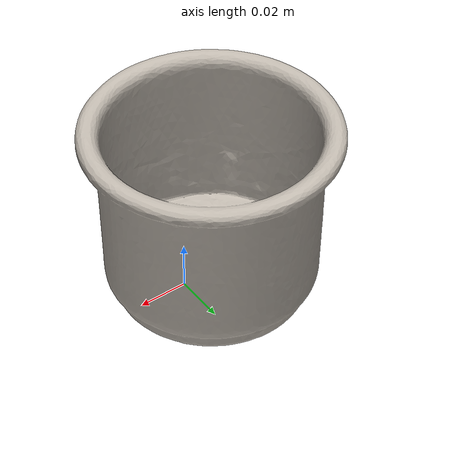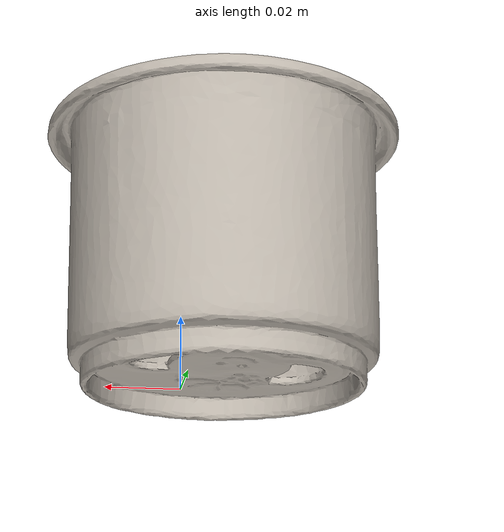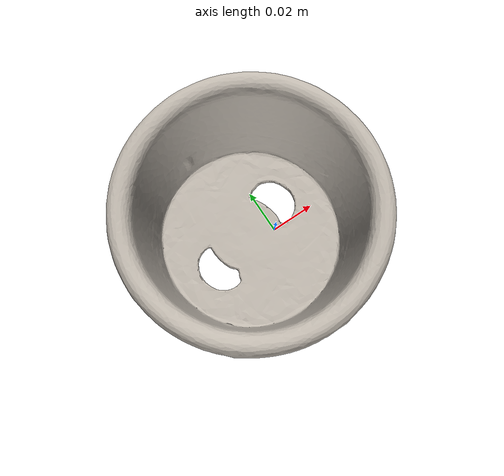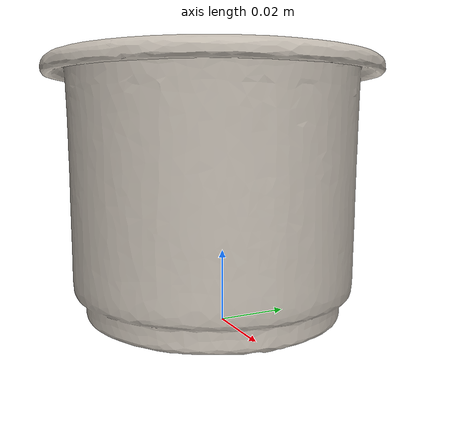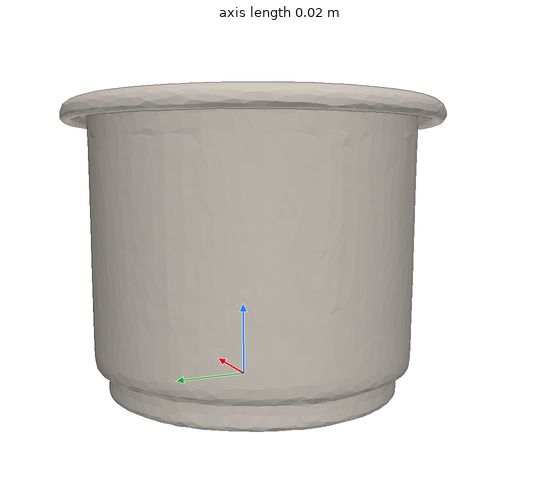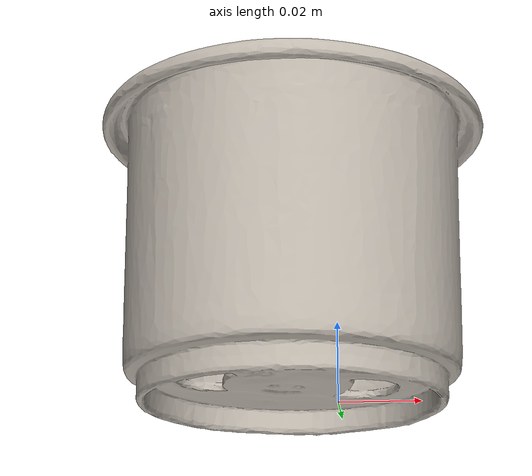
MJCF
<mujoco model="cups_i">
  <compiler angle="radian" meshdir="assets" texturedir="assets"/>
    <default>
        <default class="ycb_col">
            <geom contype="1" conaffinity="1" group="3" rgba=".4 .5 .6 1"/>
        </default>
        <default class="ycb_viz">
            <geom contype="0" conaffinity="0" type="mesh" mass="0"/>
        </default>
    </default>
  <asset>
    <texture type="2d" name="i_cups_tex" file="texture_map.png"/>
    <material name="i_cups_mat" texture="i_cups_tex" specular="0.5" shininess="0.5"/>
    <mesh file="textured.obj" name="i_cups"/>
    <mesh file="textured_collision_0.obj" name="i_cups_collision_0"/>
    <mesh file="textured_collision_1.obj" name="i_cups_collision_1"/>
    <mesh file="textured_collision_2.obj" name="i_cups_collision_2"/>
    <mesh file="textured_collision_3.obj" name="i_cups_collision_3"/>
    <mesh file="textured_collision_4.obj" name="i_cups_collision_4"/>
    <mesh file="textured_collision_5.obj" name="i_cups_collision_5"/>
    <mesh file="textured_collision_6.obj" name="i_cups_collision_6"/>
    <mesh file="textured_collision_7.obj" name="i_cups_collision_7"/>
    <mesh file="textured_collision_8.obj" name="i_cups_collision_8"/>
    <mesh file="textured_collision_9.obj" name="i_cups_collision_9"/>
    <mesh file="textured_collision_10.obj" name="i_cups_collision_10"/>
    <mesh file="textured_collision_11.obj" name="i_cups_collision_11"/>
    <mesh file="textured_collision_12.obj" name="i_cups_collision_12"/>
    <mesh file="textured_collision_13.obj" name="i_cups_collision_13"/>
    <mesh file="textured_collision_14.obj" name="i_cups_collision_14"/>
    <mesh file="textured_collision_15.obj" name="i_cups_collision_15"/>
    <mesh file="textured_collision_16.obj" name="i_cups_collision_16"/>
    <mesh file="textured_collision_17.obj" name="i_cups_collision_17"/>
    <mesh file="textured_collision_18.obj" name="i_cups_collision_18"/>
    <mesh file="textured_collision_19.obj" name="i_cups_collision_19"/>
    <mesh file="textured_collision_20.obj" name="i_cups_collision_20"/>
    <mesh file="textured_collision_21.obj" name="i_cups_collision_21"/>
    <mesh file="textured_collision_22.obj" name="i_cups_collision_22"/>
    <mesh file="textured_collision_23.obj" name="i_cups_collision_23"/>
    <mesh file="textured_collision_24.obj" name="i_cups_collision_24"/>
    <mesh file="textured_collision_25.obj" name="i_cups_collision_25"/>
    <mesh file="textured_collision_26.obj" name="i_cups_collision_26"/>
    <mesh file="textured_collision_27.obj" name="i_cups_collision_27"/>
    <mesh file="textured_collision_28.obj" name="i_cups_collision_28"/>
    <mesh file="textured_collision_29.obj" name="i_cups_collision_29"/>
    <mesh file="textured_collision_30.obj" name="i_cups_collision_30"/>
    <mesh file="textured_collision_31.obj" name="i_cups_collision_31"/>
    <mesh file="textured_collision_32.obj" name="i_cups_collision_32"/>
    <mesh file="textured_collision_33.obj" name="i_cups_collision_33"/>
    <mesh file="textured_collision_34.obj" name="i_cups_collision_34"/>
    <mesh file="textured_collision_35.obj" name="i_cups_collision_35"/>
    <mesh file="textured_collision_36.obj" name="i_cups_collision_36"/>
    <mesh file="textured_collision_37.obj" name="i_cups_collision_37"/>
    <mesh file="textured_collision_38.obj" name="i_cups_collision_38"/>
    <mesh file="textured_collision_39.obj" name="i_cups_collision_39"/>
    <mesh file="textured_collision_40.obj" name="i_cups_collision_40"/>
    <mesh file="textured_collision_41.obj" name="i_cups_collision_41"/>
    <mesh file="textured_collision_42.obj" name="i_cups_collision_42"/>
    <mesh file="textured_collision_43.obj" name="i_cups_collision_43"/>
    <mesh file="textured_collision_44.obj" name="i_cups_collision_44"/>
    <mesh file="textured_collision_45.obj" name="i_cups_collision_45"/>
    <mesh file="textured_collision_46.obj" name="i_cups_collision_46"/>
    <mesh file="textured_collision_47.obj" name="i_cups_collision_47"/>
    <mesh file="textured_collision_48.obj" name="i_cups_collision_48"/>
    <mesh file="textured_collision_49.obj" name="i_cups_collision_49"/>
  </asset>
  <worldbody>
      <geom material="i_cups_mat" mesh="i_cups" class="ycb_viz"/>
      <geom mesh="i_cups_collision_0" class="ycb_col" conaffinity="1" condim="4" friction="0.1 0.1 0.1" mass="0.0007064287103048707" rgba="1 1 1 1" solimp="0.99 0.99 0.01" solref=".001 0.1" type="mesh" group="3"/>
      <geom mesh="i_cups_collision_1" class="ycb_col" conaffinity="1" condim="4" friction="0.1 0.1 0.1" mass="0.0005757681255809353" rgba="1 1 1 1" solimp="0.99 0.99 0.01" solref=".001 0.1" type="mesh" group="3"/>
      <geom mesh="i_cups_collision_2" class="ycb_col" conaffinity="1" condim="4" friction="0.1 0.1 0.1" mass="0.0008119140986917584" rgba="1 1 1 1" solimp="0.99 0.99 0.01" solref=".001 0.1" type="mesh" group="3"/>
      <geom mesh="i_cups_collision_3" class="ycb_col" conaffinity="1" condim="4" friction="0.1 0.1 0.1" mass="0.000560969722564391" rgba="1 1 1 1" solimp="0.99 0.99 0.01" solref=".001 0.1" type="mesh" group="3"/>
      <geom mesh="i_cups_collision_4" class="ycb_col" conaffinity="1" condim="4" friction="0.1 0.1 0.1" mass="0.0002604053861336037" rgba="1 1 1 1" solimp="0.99 0.99 0.01" solref=".001 0.1" type="mesh" group="3"/>
      <geom mesh="i_cups_collision_5" class="ycb_col" conaffinity="1" condim="4" friction="0.1 0.1 0.1" mass="0.00015991685342721195" rgba="1 1 1 1" solimp="0.99 0.99 0.01" solref=".001 0.1" type="mesh" group="3"/>
      <geom mesh="i_cups_collision_6" class="ycb_col" conaffinity="1" condim="4" friction="0.1 0.1 0.1" mass="0.00047778696280385575" rgba="1 1 1 1" solimp="0.99 0.99 0.01" solref=".001 0.1" type="mesh" group="3"/>
      <geom mesh="i_cups_collision_7" class="ycb_col" conaffinity="1" condim="4" friction="0.1 0.1 0.1" mass="0.0005202980279664292" rgba="1 1 1 1" solimp="0.99 0.99 0.01" solref=".001 0.1" type="mesh" group="3"/>
      <geom mesh="i_cups_collision_8" class="ycb_col" conaffinity="1" condim="4" friction="0.1 0.1 0.1" mass="0.00028245651398195725" rgba="1 1 1 1" solimp="0.99 0.99 0.01" solref=".001 0.1" type="mesh" group="3"/>
      <geom mesh="i_cups_collision_9" class="ycb_col" conaffinity="1" condim="4" friction="0.1 0.1 0.1" mass="0.00013505863691578657" rgba="1 1 1 1" solimp="0.99 0.99 0.01" solref=".001 0.1" type="mesh" group="3"/>
      <geom mesh="i_cups_collision_10" class="ycb_col" conaffinity="1" condim="4" friction="0.1 0.1 0.1" mass="0.0004888945734962153" rgba="1 1 1 1" solimp="0.99 0.99 0.01" solref=".001 0.1" type="mesh" group="3"/>
      <geom mesh="i_cups_collision_11" class="ycb_col" conaffinity="1" condim="4" friction="0.1 0.1 0.1" mass="0.00013663580731560786" rgba="1 1 1 1" solimp="0.99 0.99 0.01" solref=".001 0.1" type="mesh" group="3"/>
      <geom mesh="i_cups_collision_12" class="ycb_col" conaffinity="1" condim="4" friction="0.1 0.1 0.1" mass="0.000496157959043706" rgba="1 1 1 1" solimp="0.99 0.99 0.01" solref=".001 0.1" type="mesh" group="3"/>
      <geom mesh="i_cups_collision_13" class="ycb_col" conaffinity="1" condim="4" friction="0.1 0.1 0.1" mass="0.00026113037751079307" rgba="1 1 1 1" solimp="0.99 0.99 0.01" solref=".001 0.1" type="mesh" group="3"/>
      <geom mesh="i_cups_collision_14" class="ycb_col" conaffinity="1" condim="4" friction="0.1 0.1 0.1" mass="0.0005294623403845795" rgba="1 1 1 1" solimp="0.99 0.99 0.01" solref=".001 0.1" type="mesh" group="3"/>
      <geom mesh="i_cups_collision_15" class="ycb_col" conaffinity="1" condim="4" friction="0.1 0.1 0.1" mass="0.0013620985784765526" rgba="1 1 1 1" solimp="0.99 0.99 0.01" solref=".001 0.1" type="mesh" group="3"/>
      <geom mesh="i_cups_collision_16" class="ycb_col" conaffinity="1" condim="4" friction="0.1 0.1 0.1" mass="0.0016382569702124892" rgba="1 1 1 1" solimp="0.99 0.99 0.01" solref=".001 0.1" type="mesh" group="3"/>
      <geom mesh="i_cups_collision_17" class="ycb_col" conaffinity="1" condim="4" friction="0.1 0.1 0.1" mass="0.0011172565458573433" rgba="1 1 1 1" solimp="0.99 0.99 0.01" solref=".001 0.1" type="mesh" group="3"/>
      <geom mesh="i_cups_collision_18" class="ycb_col" conaffinity="1" condim="4" friction="0.1 0.1 0.1" mass="0.00017291733438310586" rgba="1 1 1 1" solimp="0.99 0.99 0.01" solref=".001 0.1" type="mesh" group="3"/>
      <geom mesh="i_cups_collision_19" class="ycb_col" conaffinity="1" condim="4" friction="0.1 0.1 0.1" mass="0.0002495651116550584" rgba="1 1 1 1" solimp="0.99 0.99 0.01" solref=".001 0.1" type="mesh" group="3"/>
      <geom mesh="i_cups_collision_20" class="ycb_col" conaffinity="1" condim="4" friction="0.1 0.1 0.1" mass="0.0014988769557882412" rgba="1 1 1 1" solimp="0.99 0.99 0.01" solref=".001 0.1" type="mesh" group="3"/>
      <geom mesh="i_cups_collision_21" class="ycb_col" conaffinity="1" condim="4" friction="0.1 0.1 0.1" mass="0.00012144248070327953" rgba="1 1 1 1" solimp="0.99 0.99 0.01" solref=".001 0.1" type="mesh" group="3"/>
      <geom mesh="i_cups_collision_22" class="ycb_col" conaffinity="1" condim="4" friction="0.1 0.1 0.1" mass="0.0011276907739073715" rgba="1 1 1 1" solimp="0.99 0.99 0.01" solref=".001 0.1" type="mesh" group="3"/>
      <geom mesh="i_cups_collision_23" class="ycb_col" conaffinity="1" condim="4" friction="0.1 0.1 0.1" mass="0.001431049920647567" rgba="1 1 1 1" solimp="0.99 0.99 0.01" solref=".001 0.1" type="mesh" group="3"/>
      <geom mesh="i_cups_collision_24" class="ycb_col" conaffinity="1" condim="4" friction="0.1 0.1 0.1" mass="0.0011973107344444226" rgba="1 1 1 1" solimp="0.99 0.99 0.01" solref=".001 0.1" type="mesh" group="3"/>
      <geom mesh="i_cups_collision_25" class="ycb_col" conaffinity="1" condim="4" friction="0.1 0.1 0.1" mass="0.0012100586318012142" rgba="1 1 1 1" solimp="0.99 0.99 0.01" solref=".001 0.1" type="mesh" group="3"/>
      <geom mesh="i_cups_collision_26" class="ycb_col" conaffinity="1" condim="4" friction="0.1 0.1 0.1" mass="0.0001998100390851644" rgba="1 1 1 1" solimp="0.99 0.99 0.01" solref=".001 0.1" type="mesh" group="3"/>
      <geom mesh="i_cups_collision_27" class="ycb_col" conaffinity="1" condim="4" friction="0.1 0.1 0.1" mass="0.0002413665896266583" rgba="1 1 1 1" solimp="0.99 0.99 0.01" solref=".001 0.1" type="mesh" group="3"/>
      <geom mesh="i_cups_collision_28" class="ycb_col" conaffinity="1" condim="4" friction="0.1 0.1 0.1" mass="0.001265163491807255" rgba="1 1 1 1" solimp="0.99 0.99 0.01" solref=".001 0.1" type="mesh" group="3"/>
      <geom mesh="i_cups_collision_29" class="ycb_col" conaffinity="1" condim="4" friction="0.1 0.1 0.1" mass="0.001430695033753225" rgba="1 1 1 1" solimp="0.99 0.99 0.01" solref=".001 0.1" type="mesh" group="3"/>
      <geom mesh="i_cups_collision_30" class="ycb_col" conaffinity="1" condim="4" friction="0.1 0.1 0.1" mass="0.0012975146016287052" rgba="1 1 1 1" solimp="0.99 0.99 0.01" solref=".001 0.1" type="mesh" group="3"/>
      <geom mesh="i_cups_collision_31" class="ycb_col" conaffinity="1" condim="4" friction="0.1 0.1 0.1" mass="0.0015481434630420633" rgba="1 1 1 1" solimp="0.99 0.99 0.01" solref=".001 0.1" type="mesh" group="3"/>
      <geom mesh="i_cups_collision_32" class="ycb_col" conaffinity="1" condim="4" friction="0.1 0.1 0.1" mass="0.0004444906672374225" rgba="1 1 1 1" solimp="0.99 0.99 0.01" solref=".001 0.1" type="mesh" group="3"/>
      <geom mesh="i_cups_collision_33" class="ycb_col" conaffinity="1" condim="4" friction="0.1 0.1 0.1" mass="0.0003555531925168478" rgba="1 1 1 1" solimp="0.99 0.99 0.01" solref=".001 0.1" type="mesh" group="3"/>
      <geom mesh="i_cups_collision_34" class="ycb_col" conaffinity="1" condim="4" friction="0.1 0.1 0.1" mass="0.0006712884111680762" rgba="1 1 1 1" solimp="0.99 0.99 0.01" solref=".001 0.1" type="mesh" group="3"/>
      <geom mesh="i_cups_collision_35" class="ycb_col" conaffinity="1" condim="4" friction="0.1 0.1 0.1" mass="0.0011914250668091648" rgba="1 1 1 1" solimp="0.99 0.99 0.01" solref=".001 0.1" type="mesh" group="3"/>
      <geom mesh="i_cups_collision_36" class="ycb_col" conaffinity="1" condim="4" friction="0.1 0.1 0.1" mass="0.0013353195040891929" rgba="1 1 1 1" solimp="0.99 0.99 0.01" solref=".001 0.1" type="mesh" group="3"/>
      <geom mesh="i_cups_collision_37" class="ycb_col" conaffinity="1" condim="4" friction="0.1 0.1 0.1" mass="0.001053528574093945" rgba="1 1 1 1" solimp="0.99 0.99 0.01" solref=".001 0.1" type="mesh" group="3"/>
      <geom mesh="i_cups_collision_38" class="ycb_col" conaffinity="1" condim="4" friction="0.1 0.1 0.1" mass="0.0016062915369693383" rgba="1 1 1 1" solimp="0.99 0.99 0.01" solref=".001 0.1" type="mesh" group="3"/>
      <geom mesh="i_cups_collision_39" class="ycb_col" conaffinity="1" condim="4" friction="0.1 0.1 0.1" mass="0.00015935418208129943" rgba="1 1 1 1" solimp="0.99 0.99 0.01" solref=".001 0.1" type="mesh" group="3"/>
      <geom mesh="i_cups_collision_40" class="ycb_col" conaffinity="1" condim="4" friction="0.1 0.1 0.1" mass="0.00014621064063461453" rgba="1 1 1 1" solimp="0.99 0.99 0.01" solref=".001 0.1" type="mesh" group="3"/>
      <geom mesh="i_cups_collision_41" class="ycb_col" conaffinity="1" condim="4" friction="0.1 0.1 0.1" mass="0.0005298441363477279" rgba="1 1 1 1" solimp="0.99 0.99 0.01" solref=".001 0.1" type="mesh" group="3"/>
      <geom mesh="i_cups_collision_42" class="ycb_col" conaffinity="1" condim="4" friction="0.1 0.1 0.1" mass="0.00021735841001626827" rgba="1 1 1 1" solimp="0.99 0.99 0.01" solref=".001 0.1" type="mesh" group="3"/>
      <geom mesh="i_cups_collision_43" class="ycb_col" conaffinity="1" condim="4" friction="0.1 0.1 0.1" mass="0.00017727513849234125" rgba="1 1 1 1" solimp="0.99 0.99 0.01" solref=".001 0.1" type="mesh" group="3"/>
      <geom mesh="i_cups_collision_44" class="ycb_col" conaffinity="1" condim="4" friction="0.1 0.1 0.1" mass="0.0005495797158009998" rgba="1 1 1 1" solimp="0.99 0.99 0.01" solref=".001 0.1" type="mesh" group="3"/>
      <geom mesh="i_cups_collision_45" class="ycb_col" conaffinity="1" condim="4" friction="0.1 0.1 0.1" mass="0.0008275725086073236" rgba="1 1 1 1" solimp="0.99 0.99 0.01" solref=".001 0.1" type="mesh" group="3"/>
      <geom mesh="i_cups_collision_46" class="ycb_col" conaffinity="1" condim="4" friction="0.1 0.1 0.1" mass="0.0007919843919891644" rgba="1 1 1 1" solimp="0.99 0.99 0.01" solref=".001 0.1" type="mesh" group="3"/>
      <geom mesh="i_cups_collision_47" class="ycb_col" conaffinity="1" condim="4" friction="0.1 0.1 0.1" mass="0.0006470650489790797" rgba="1 1 1 1" solimp="0.99 0.99 0.01" solref=".001 0.1" type="mesh" group="3"/>
      <geom mesh="i_cups_collision_48" class="ycb_col" conaffinity="1" condim="4" friction="0.1 0.1 0.1" mass="0.000660724414149432" rgba="1 1 1 1" solimp="0.99 0.99 0.01" solref=".001 0.1" type="mesh" group="3"/>
      <geom mesh="i_cups_collision_49" class="ycb_col" conaffinity="1" condim="4" friction="0.1 0.1 0.1" mass="0.0001226331070763423" rgba="1 1 1 1" solimp="0.99 0.99 0.01" solref=".001 0.1" type="mesh" group="3"/>
  </worldbody>
</mujoco>
